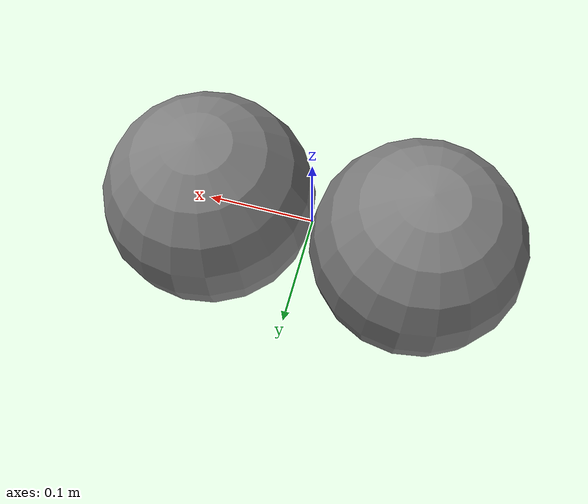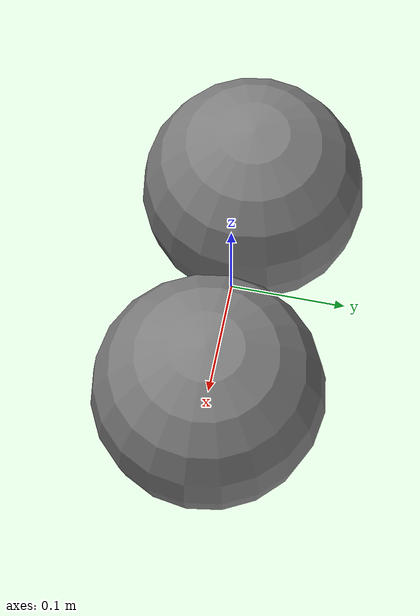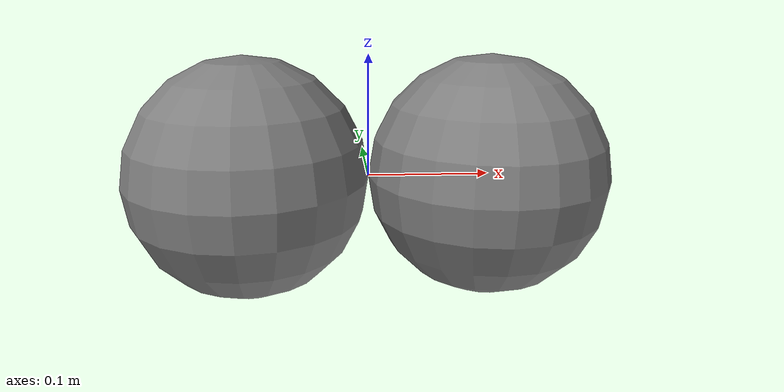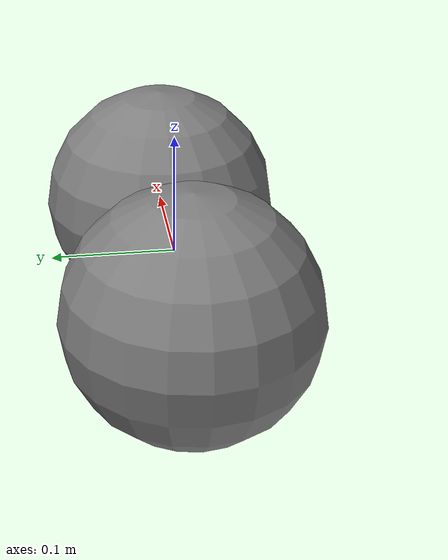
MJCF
<mujoco model="explicit-contact-pair-loss">
  <worldbody>
    <body name="pair_a_body" pos="-0.1 0 0">
      <geom name="pair_a" type="sphere" size="0.1" mass="1" contype="0" conaffinity="0"/>
    </body>
    <body name="pair_b_body" pos="0.1 0 0">
      <geom name="pair_b" type="sphere" size="0.1" mass="1" contype="0" conaffinity="0"/>
    </body>
  </worldbody>
  <contact>
    <pair geom1="pair_a" geom2="pair_b"/>
  </contact>
</mujoco>
